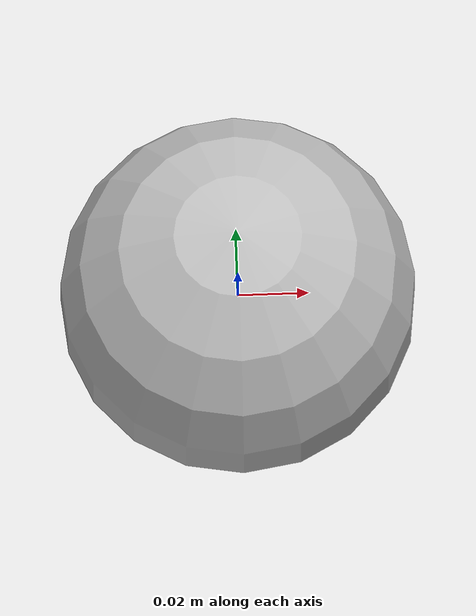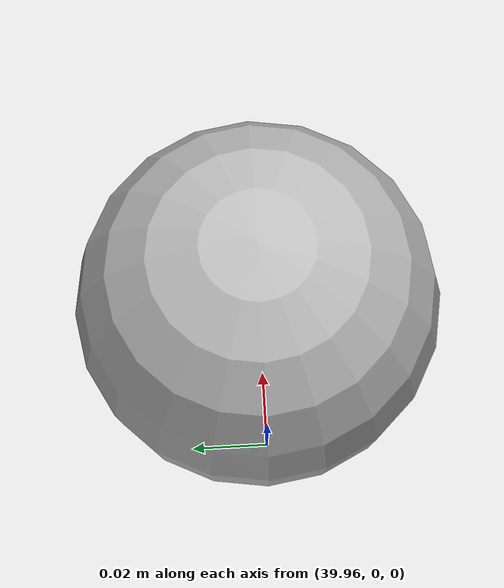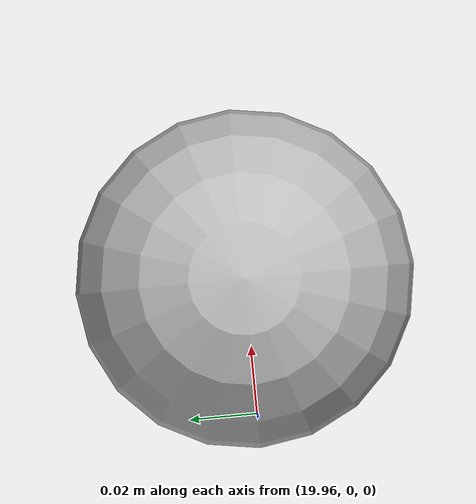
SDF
<?xml version="1.0" ?>
<sdf version="1.9">
  <world name="thruster_probe">
    <physics name="default_physics" default="true" type="ignored">
      <max_step_size>0.001</max_step_size>
      <real_time_factor>1</real_time_factor>
    </physics>
    <gravity>0 0 0</gravity>

    <model name="probe_no_arm">
      <pose>0 0 0 0 0 0</pose>
      <link name="base_link">
        <inertial>
          <mass>10.0</mass>
          <inertia>
            <ixx>1.0</ixx>
            <ixy>0</ixy>
            <ixz>0</ixz>
            <iyy>1.0</iyy>
            <iyz>0</iyz>
            <izz>1.0</izz>
          </inertia>
        </inertial>
        <visual name="visual">
          <geometry><sphere><radius>0.05</radius></sphere></geometry>
        </visual>
      </link>
      <plugin filename="libthruster.so" name="thruster">
        <link_name>base_link</link_name>
        <thruster_id>0</thruster_id>
        <thruster_axis>0 1 0</thruster_axis>
        <application_point>0 0 0</application_point>
        <center_of_mass>0 0 0</center_of_mass>
        <dynamics><type>ZeroOrder</type></dynamics>
        <conversion>
          <type>Basic</type>
          <rotorConstant>1.0</rotorConstant>
        </conversion>
      </plugin>
    </model>

    <model name="probe_arm">
      <pose>20 0 0 0 0 0</pose>
      <link name="base_link">
        <inertial>
          <mass>10.0</mass>
          <inertia>
            <ixx>1.0</ixx>
            <ixy>0</ixy>
            <ixz>0</ixz>
            <iyy>1.0</iyy>
            <iyz>0</iyz>
            <izz>1.0</izz>
          </inertia>
        </inertial>
        <visual name="visual">
          <geometry><sphere><radius>0.05</radius></sphere></geometry>
        </visual>
      </link>
      <plugin filename="libthruster.so" name="thruster">
        <link_name>base_link</link_name>
        <thruster_id>0</thruster_id>
        <thruster_axis>0 1 0</thruster_axis>
        <application_point>0.5 0 0</application_point>
        <center_of_mass>0 0 0</center_of_mass>
        <dynamics><type>ZeroOrder</type></dynamics>
        <conversion>
          <type>Basic</type>
          <rotorConstant>1.0</rotorConstant>
        </conversion>
      </plugin>
    </model>

    <model name="probe_arm_cog">
      <pose>40 0 0 0 0 0</pose>
      <link name="base_link">
        <inertial>
          <mass>10.0</mass>
          <inertia>
            <ixx>1.0</ixx>
            <ixy>0</ixy>
            <ixz>0</ixz>
            <iyy>1.0</iyy>
            <iyz>0</iyz>
            <izz>1.0</izz>
          </inertia>
        </inertial>
        <visual name="visual">
          <geometry><sphere><radius>0.05</radius></sphere></geometry>
        </visual>
      </link>
      <plugin filename="libthruster.so" name="thruster">
        <link_name>base_link</link_name>
        <thruster_id>0</thruster_id>
        <thruster_axis>0 1 0</thruster_axis>
        <application_point>0.5 0 0</application_point>
        <center_of_mass>0.25 0 0</center_of_mass>
        <dynamics><type>ZeroOrder</type></dynamics>
        <conversion>
          <type>Basic</type>
          <rotorConstant>1.0</rotorConstant>
        </conversion>
      </plugin>
    </model>

    <model name="probe_clamped">
      <pose>60 0 0 0 0 0</pose>
      <link name="base_link">
        <inertial>
          <mass>10.0</mass>
          <inertia>
            <ixx>1.0</ixx>
            <ixy>0</ixy>
            <ixz>0</ixz>
            <iyy>1.0</iyy>
            <iyz>0</iyz>
            <izz>1.0</izz>
          </inertia>
        </inertial>
        <visual name="visual">
          <geometry><sphere><radius>0.05</radius></sphere></geometry>
        </visual>
      </link>
      <plugin filename="libthruster.so" name="thruster">
        <link_name>base_link</link_name>
        <thruster_id>0</thruster_id>
        <thruster_axis>0 1 0</thruster_axis>
        <application_point>0 0 0</application_point>
        <center_of_mass>0 0 0</center_of_mass>
        <clamp_max>0.5</clamp_max>
        <dynamics><type>ZeroOrder</type></dynamics>
        <conversion>
          <type>Basic</type>
          <rotorConstant>1.0</rotorConstant>
        </conversion>
      </plugin>
    </model>
  </world>
</sdf>
